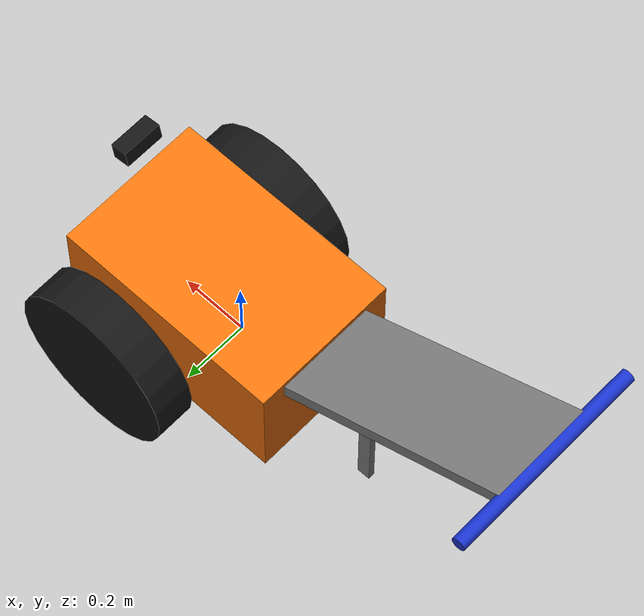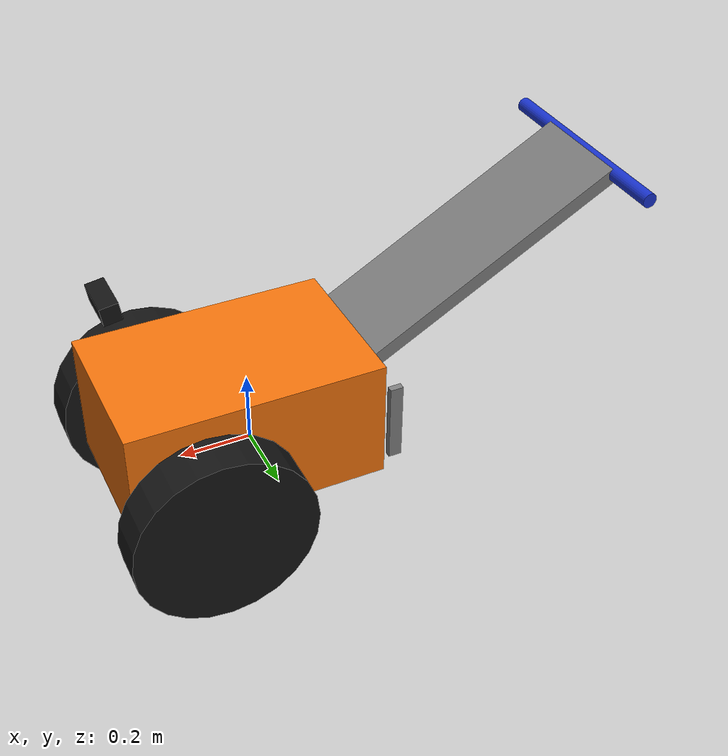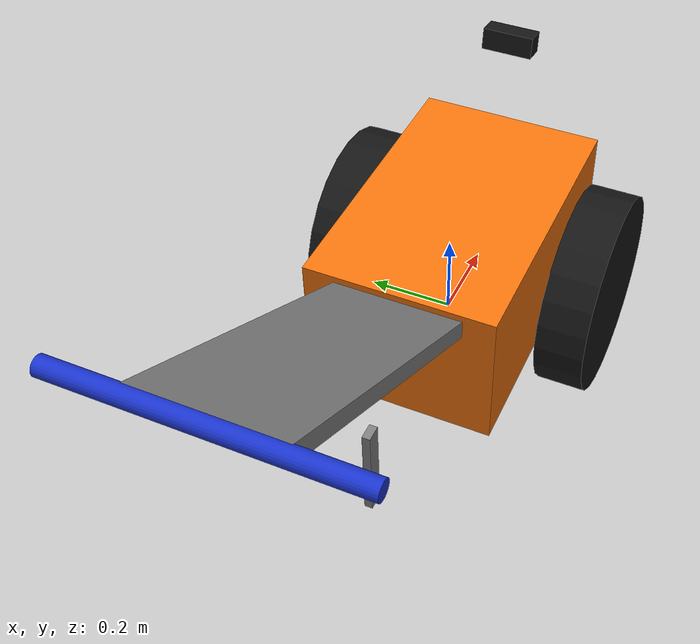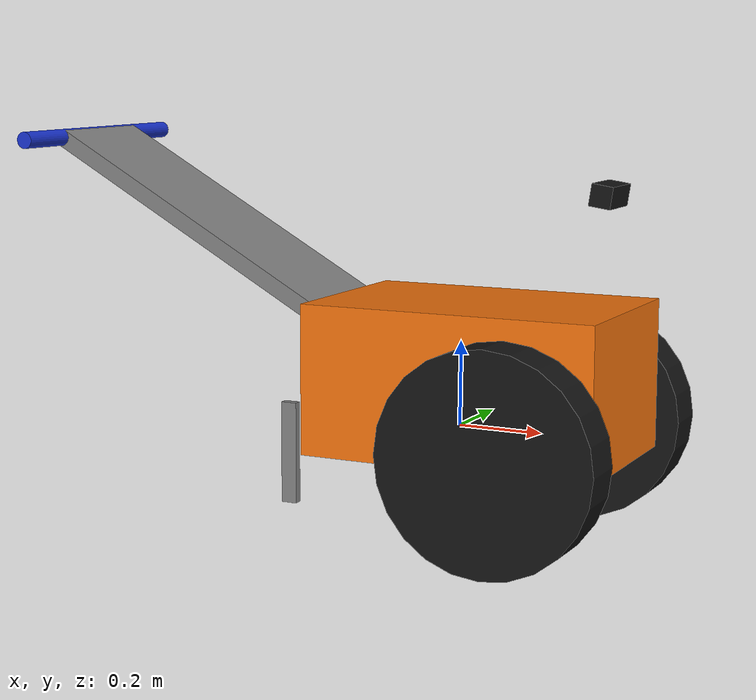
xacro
<?xml version="1.0"?>
<robot name="tractor" xmlns:xacro="http://www.ros.org/wiki/xacro">

  <!-- ====================== Paramètres géométriques ====================== -->
  <xacro:property name="PI" value="3.14159265359"/>

  <xacro:property name="wheel_radius" value="0.25"/>
  <xacro:property name="wheel_width"  value="0.12"/>
  <xacro:property name="wheel_track"  value="0.60"/>   <!-- entraxe gauche/droite -->
  <xacro:property name="axle_x"       value="0.20"/>   <!-- essieu devant le CdM -->

  <xacro:property name="chassis_mass" value="90.0"/>
  <xacro:property name="chassis_lx"   value="0.70"/>
  <xacro:property name="chassis_ly"   value="0.45"/>
  <xacro:property name="chassis_lz"   value="0.35"/>
  <xacro:property name="chassis_z"    value="0.12"/>   <!-- centre de la boîte au-dessus de l'axe -->

  <xacro:property name="axle_mass"    value="20.0"/>   <!-- essieu + 2 roues -->

  <xacro:property name="eperon_x"     value="-0.45"/>
  <xacro:property name="eperon_r"     value="0.03"/>   <!-- rayon de la sphère de contact -->

  <xacro:property name="handle_x"     value="-1.00"/>
  <xacro:property name="handle_z"     value="0.65"/>   <!-- ~0.90 m au-dessus du sol -->

  <xacro:property name="camera_x"     value="0.35"/>
  <xacro:property name="camera_z"     value="0.55"/>
  <xacro:property name="camera_pitch" value="0.15"/>   <!-- légèrement vers le sol -->

  <!-- ====================== Friction (voir README, Étape 3) ====================== -->
  <!-- Roues : mu1 sur fdir1 = axe du cylindre = LATÉRAL (faible -> glissement)
               mu2 = LONGITUDINAL (traction) -->
  <xacro:property name="wheel_mu_lat"  value="0.30"/>
  <xacro:property name="wheel_mu_long" value="1.00"/>
  <!-- Éperon : il "laboure" le sol, résistance élevée dans toutes les directions -->
  <xacro:property name="eperon_mu"     value="3.00"/>

  <!-- ====================== Macros d'inertie ====================== -->
  <xacro:macro name="box_inertia" params="m x y z">
    <inertia ixx="${m*(y*y+z*z)/12}" ixy="0" ixz="0"
             iyy="${m*(x*x+z*z)/12}" iyz="0"
             izz="${m*(x*x+y*y)/12}"/>
  </xacro:macro>
  <xacro:macro name="tiny_inertial">
    <inertial>
      <mass value="0.05"/>
      <inertia ixx="1e-5" ixy="0" ixz="0" iyy="1e-5" iyz="0" izz="1e-5"/>
    </inertial>
  </xacro:macro>

  <material name="orange"><color rgba="0.95 0.45 0.05 1"/></material>
  <material name="black"><color rgba="0.08 0.08 0.08 1"/></material>
  <material name="grey"><color rgba="0.5 0.5 0.5 1"/></material>
  <material name="blue"><color rgba="0.1 0.2 0.8 1"/></material>

  <!-- ====================== base_link (châssis + moteur) ====================== -->
  <link name="base_link">
    <inertial>
      <origin xyz="0 0 0" rpy="0 0 0"/>   <!-- CdM = origine : NE PAS DÉPLACER -->
      <mass value="${chassis_mass}"/>
      <xacro:box_inertia m="${chassis_mass}" x="${chassis_lx}" y="${chassis_ly}" z="${chassis_lz}"/>
    </inertial>
    <visual>
      <origin xyz="0.05 0 ${chassis_z}" rpy="0 0 0"/>
      <geometry><box size="${chassis_lx} ${chassis_ly} ${chassis_lz}"/></geometry>
      <material name="orange"/>
    </visual>
    <collision>
      <origin xyz="0.05 0 ${chassis_z}" rpy="0 0 0"/>
      <geometry><box size="${chassis_lx} ${chassis_ly} ${chassis_lz}"/></geometry>
    </collision>
  </link>

  <!-- ====================== Essieu rigide + roues ====================== -->
  <link name="axle_link">
    <inertial>
      <origin xyz="0 0 0" rpy="0 0 0"/>
      <mass value="${axle_mass}"/>
      <!-- approx : 2 cylindres pleins décalés de +-track/2 -->
      <inertia ixx="${axle_mass*(3*wheel_radius*wheel_radius+wheel_width*wheel_width)/12 + axle_mass*(wheel_track/2)*(wheel_track/2)}"
               ixy="0" ixz="0"
               iyy="${axle_mass*wheel_radius*wheel_radius/2}" iyz="0"
               izz="${axle_mass*(3*wheel_radius*wheel_radius+wheel_width*wheel_width)/12 + axle_mass*(wheel_track/2)*(wheel_track/2)}"/>
    </inertial>
    <!-- Roue gauche -->
    <visual>
      <origin xyz="0 ${wheel_track/2} 0" rpy="${PI/2} 0 0"/>
      <geometry><cylinder radius="${wheel_radius}" length="${wheel_width}"/></geometry>
      <material name="black"/>
    </visual>
    <collision name="wheel_left_collision">
      <origin xyz="0 ${wheel_track/2} 0" rpy="${PI/2} 0 0"/>
      <geometry><cylinder radius="${wheel_radius}" length="${wheel_width}"/></geometry>
    </collision>
    <!-- Roue droite -->
    <visual>
      <origin xyz="0 ${-wheel_track/2} 0" rpy="${PI/2} 0 0"/>
      <geometry><cylinder radius="${wheel_radius}" length="${wheel_width}"/></geometry>
      <material name="black"/>
    </visual>
    <collision name="wheel_right_collision">
      <origin xyz="0 ${-wheel_track/2} 0" rpy="${PI/2} 0 0"/>
      <geometry><cylinder radius="${wheel_radius}" length="${wheel_width}"/></geometry>
    </collision>
    <!-- Barre d'essieu (visuel) -->
    <visual>
      <origin xyz="0 0 0" rpy="${PI/2} 0 0"/>
      <geometry><cylinder radius="0.025" length="${wheel_track}"/></geometry>
      <material name="grey"/>
    </visual>
  </link>

  <joint name="axle_joint" type="continuous">
    <parent link="base_link"/>
    <child link="axle_link"/>
    <origin xyz="${axle_x} 0 0" rpy="0 0 0"/>
    <axis xyz="0 1 0"/>   <!-- rotation + => avance en X+ -->
    <limit effort="300" velocity="20"/>
    <dynamics damping="0.5" friction="0.0"/>
  </joint>

  <!-- ====================== Éperon de terrage (ARRIÈRE, X-) ====================== -->
  <link name="eperon_link">
    <xacro:tiny_inertial/>
    <visual>
      <origin xyz="0 0 ${-wheel_radius/2 + eperon_r/2}" rpy="0 0 0"/>
      <geometry><box size="0.04 0.02 ${wheel_radius}"/></geometry>
      <material name="grey"/>
    </visual>
    <collision name="eperon_collision">
      <!-- bas de la sphère au niveau du bas des roues (z = -wheel_radius) -->
      <origin xyz="0 0 ${-wheel_radius + eperon_r}" rpy="0 0 0"/>
      <geometry><sphere radius="${eperon_r}"/></geometry>
    </collision>
  </link>
  <joint name="eperon_joint" type="fixed">
    <parent link="base_link"/>
    <child link="eperon_link"/>
    <origin xyz="${eperon_x} 0 0" rpy="0 0 0"/>
  </joint>

  <!-- ====================== Guidon (ARRIÈRE, X-) ====================== -->
  <link name="guidon_link">
    <xacro:tiny_inertial/>
    <visual>  <!-- poignée transversale -->
      <origin xyz="0 0 0" rpy="${PI/2} 0 0"/>
      <geometry><cylinder radius="0.02" length="0.60"/></geometry>
      <material name="blue"/>
    </visual>
  </link>
  <joint name="guidon_joint" type="fixed">
    <parent link="base_link"/>
    <child link="guidon_link"/>
    <origin xyz="${handle_x} 0 ${handle_z}" rpy="0 0 0"/>
  </joint>
  <!-- Mancherons reliant le châssis au guidon (visuels seulement) -->
  <link name="mancherons_link">
    <xacro:tiny_inertial/>
    <visual>
      <!-- barre de (-0.2, 0, 0.2) jusqu'au guidon -->
      <origin xyz="${(handle_x - 0.2)/2} 0 ${(handle_z + 0.2)/2}"
              rpy="0 ${atan2(handle_z - 0.2, -(handle_x + 0.2))} 0"/>
      <geometry><box size="${sqrt((handle_x+0.2)**2 + (handle_z-0.2)**2)} 0.30 0.04"/></geometry>
      <material name="grey"/>
    </visual>
  </link>
  <joint name="mancherons_joint" type="fixed">
    <parent link="base_link"/>
    <child link="mancherons_link"/>
    <origin xyz="0 0 0" rpy="0 0 0"/>
  </joint>

  <!-- ====================== Caméra (AVANT, X+) ====================== -->
  <link name="camera_link">
    <xacro:tiny_inertial/>
    <visual>
      <geometry><box size="0.05 0.12 0.05"/></geometry>
      <material name="black"/>
    </visual>
  </link>
  <joint name="camera_joint" type="fixed">
    <parent link="base_link"/>
    <child link="camera_link"/>
    <origin xyz="${camera_x} 0 ${camera_z}" rpy="0 ${camera_pitch} 0"/>
  </joint>
  <!-- Repère optique (Z vers l'avant) pour RViz / OpenCV -->
  <link name="camera_link_optical"/>
  <joint name="camera_optical_joint" type="fixed">
    <parent link="camera_link"/>
    <child link="camera_link_optical"/>
    <origin xyz="0 0 0" rpy="${-PI/2} 0 ${-PI/2}"/>
  </joint>

  <!-- =====================================================================
       GAZEBO
       ===================================================================== -->

  <!-- Garder l'éperon comme lien séparé pour que SA friction lui soit propre
       (sinon il serait fusionné dans base_link). -->
  <gazebo reference="eperon_joint">
    <preserveFixedJoint>true</preserveFixedJoint>
  </gazebo>

  <gazebo reference="axle_link">
    <mu1>${wheel_mu_lat}</mu1>
    <mu2>${wheel_mu_long}</mu2>
    <!-- fdir1 dans le repère de la collision : axe du cylindre = latéral robot -->
    <fdir1>0 0 1</fdir1>
    <kp>1e6</kp>
    <kd>100</kd>
    <minDepth>0.001</minDepth>
  </gazebo>

  <gazebo reference="eperon_link">
    <mu1>${eperon_mu}</mu1>
    <mu2>${eperon_mu}</mu2>
    <kp>1e6</kp>
    <kd>100</kd>
    <minDepth>0.001</minDepth>
  </gazebo>

  <gazebo reference="base_link">
    <mu1>0.6</mu1>
    <mu2>0.6</mu2>
  </gazebo>

  <!-- Caméra -->
  <gazebo reference="camera_link">
    <sensor name="front_camera" type="camera">
      <always_on>1</always_on>
      <update_rate>30</update_rate>
      <visualize>true</visualize>
      <topic>camera/image_raw</topic>
      <gz_frame_id>camera_link_optical</gz_frame_id>
      <camera>
        <horizontal_fov>1.2</horizontal_fov>
        <image>
          <width>640</width>
          <height>480</height>
          <format>R8G8B8</format>
        </image>
        <clip>
          <near>0.05</near>
          <far>100</far>
        </clip>
      </camera>
    </sensor>
  </gazebo>

  <gazebo>
    <!-- Vitesse de l'essieu (rad/s) reçue sur /wheel_cmd (gz.msgs.Double) -->
    <plugin filename="gz-sim-joint-controller-system"
            name="gz::sim::systems::JointController">
      <joint_name>axle_joint</joint_name>
      <topic>wheel_cmd</topic>
      <initial_velocity>0.0</initial_velocity>
    </plugin>

    <!-- Odométrie "vérité terrain" (pose + twist) -->
    <plugin filename="gz-sim-odometry-publisher-system"
            name="gz::sim::systems::OdometryPublisher">
      <odom_frame>odom</odom_frame>
      <robot_base_frame>base_link</robot_base_frame>
      <odom_topic>odom</odom_topic>
      <tf_topic>tf_gz</tf_topic>
      <dimensions>3</dimensions>
      <odom_publish_frequency>50</odom_publish_frequency>
    </plugin>

    <plugin filename="gz-sim-joint-state-publisher-system"
            name="gz::sim::systems::JointStatePublisher">
      <topic>joint_states</topic>
    </plugin>
  </gazebo>

</robot>
